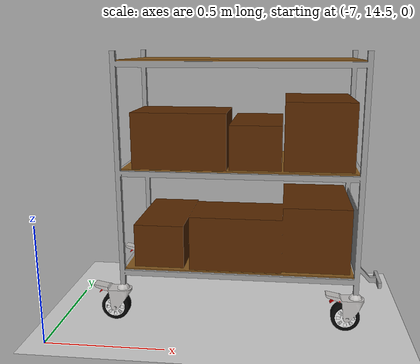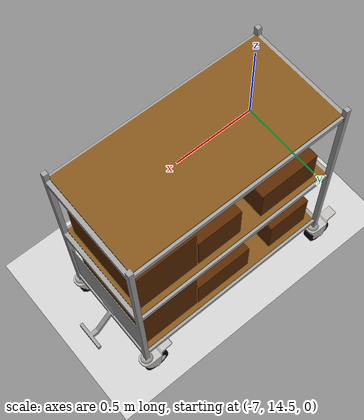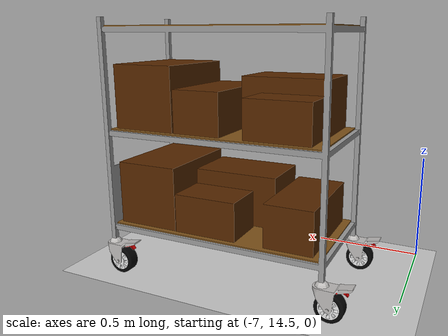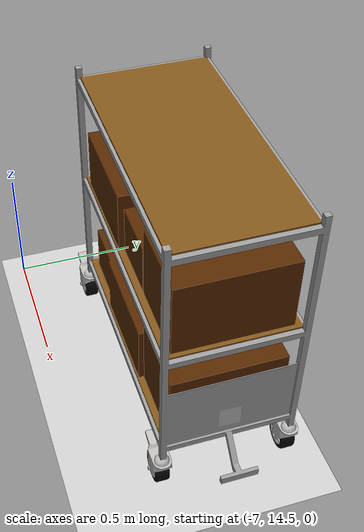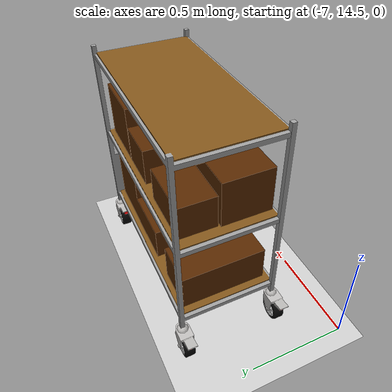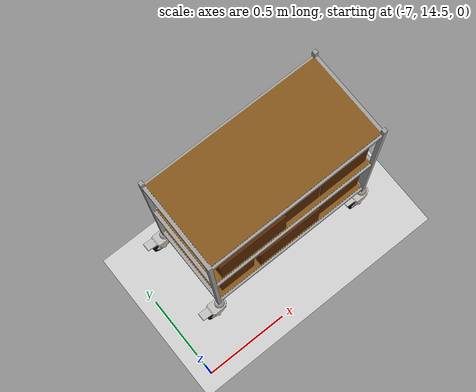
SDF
<sdf version="1.7">
 <world name="default">
  <physics name="1ms" type="ignored">
   <max_step_size>0.001</max_step_size>
   <real_time_factor>1.0</real_time_factor>
  </physics>
  <gravity>0 0 -9.8</gravity>
  <magnetic_field>6e-06 2.3e-05 -4.2e-05</magnetic_field>
  <atmosphere type="adiabatic"/>
  <plugin filename="ignition-gazebo-physics-system" name="ignition::gazebo::systems::Physics"/>
  <plugin filename="ignition-gazebo-user-commands-system" name="ignition::gazebo::systems::UserCommands"/>
  <plugin filename="ignition-gazebo-scene-broadcaster-system" name="ignition::gazebo::systems::SceneBroadcaster"/>
  <plugin filename="ignition-gazebo-sensors-system" name="ignition::gazebo::systems::Sensors">
   <render_engine>ogre2</render_engine>
  </plugin>
  <plugin filename="ignition-gazebo-imu-system" name="ignition::gazebo::systems::Imu"/>
  <plugin filename="ignition-gazebo-contact-system" name="ignition::gazebo::systems::Contact"/>
  <plugin name="rgl::RGLServerPluginManager" filename="RGLServerPluginManager">
   <do_ignore_entities_in_lidar_link>true</do_ignore_entities_in_lidar_link>
  </plugin>
  <light name="sun" type="directional">
   <pose>-5 -3 10 0 -0 0</pose>
   <cast_shadows>false</cast_shadows>
   <intensity>1</intensity>
   <direction>0 0 -1</direction>
   <diffuse>1 1 1 1</diffuse>
   <specular>1 1 1 1</specular>
   <attenuation><range>10</range><linear>1</linear><constant>1</constant><quadratic>0</quadratic></attenuation>
   <spot><inner_angle>0</inner_angle><outer_angle>0</outer_angle><falloff>0</falloff></spot>
  </light>
  <model name="ground_plane">
   <static>true</static>
   <link name="link">
    <collision name="collision"><geometry><plane><normal>0 0 1</normal></plane></geometry></collision>
    <visual name="visual">
     <geometry><plane><normal>0 0 1</normal><size>100 100</size></plane></geometry>
     <material>
      <ambient>0.8 0.8 0.8 1</ambient>
      <diffuse>0.8 0.8 0.8 1</diffuse>
      <specular>0.8 0.8 0.8 1</specular>
     </material>
    </visual>
   </link>
  </model>
  <include>
   <uri>https://fuel.ignitionrobotics.org/1.0/MovAi/models/cart_model_2</uri>
   <name>cart1</name>
   <pose>-5.73 15 0.109991 0 -1e-06 0</pose>
  </include>
 </world>
</sdf>

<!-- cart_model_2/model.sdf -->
<sdf version="1.7">
    <model name="cart_model2">
        <pose>0 0 0 0 0 0</pose>
        <!-- BASE_LINK FRAME -->
        <link name="base_link">
            <pose>0 0 0 0 0 -1.57079632679</pose>
            <inertial>
                <pose>0 -0.5 0.5 0 0 0</pose>
                <mass>30</mass>
                <inertia>
                    <ixx>0.1</ixx>
                    <ixy>0</ixy>
                    <ixz>0</ixz>
                    <iyy>0.1</iyy>
                    <iyz>0</iyz>
                    <izz>0.1</izz>
                </inertia>
            </inertial>
            <collision name="base_link_collision">
                <pose>0 0 0 0 0 0</pose>
                <geometry>
                    <mesh>
                        <scale>1 1 1</scale>
                        <uri>meshes/cart_base_collision.stl</uri>
                    </mesh>
                </geometry>
                <max_contacts>5</max_contacts>
                <surface>
                    <contact>
                        <ode>
                            <soft_cfm>1.0</soft_cfm>
                            <soft_erp>0.4</soft_erp>
                            <kp>1000000.0</kp>
                            <kd>1</kd>
                            <min_depth>0.01</min_depth>
                        </ode>
                    </contact>
                    <friction>
                        <ode>
                            <mu>1.16</mu>
                            <mu2>1.16</mu2>
                        </ode>
                    </friction>
                </surface>
            </collision>
            <visual name="base_link_visual">
                <pose>0 0 0 0 0 0</pose>
                <geometry>
                    <mesh>
                        <scale>1 1 1</scale>
                        <uri>meshes/cart_base.dae</uri>
                        <submesh>
                            <name>base_metal</name>
                            <center>false</center>
                        </submesh>
                    </mesh>
                </geometry>
            </visual>
            <visual name="base_shelf_visual">
                <pose>0 0 0 0 0 0</pose>
                <geometry>
                    <mesh>
                        <scale>1 1 1</scale>
                        <uri>meshes/cart_base.dae</uri>
                        <submesh>
                            <name>base_shelf</name>
                            <center>false</center>
                        </submesh>
                    </mesh>
                </geometry>
            </visual>
            <visual name="back_left_sup_visual">
                <pose>-0.245 -1.005 0.05 0 0 0</pose>
                <geometry>
                    <mesh>
                        <scale>1 1 1</scale>
                        <uri>meshes/sup_wheels.dae</uri>
                    </mesh>
                </geometry>
            </visual>
            <visual name="back_right_sup_visual">
                <pose>0.245 -1.005 0.05 0 0 0</pose>
                <geometry>
                    <mesh>
                        <scale>1 1 1</scale>
                        <uri>meshes/sup_wheels.dae</uri>
                    </mesh>
                </geometry>
            </visual>
            <visual name="tag_visual">
                <pose>0 0 0 0 0 0</pose>
                <geometry>
                    <mesh>
                        <scale>1 1 1</scale>
                        <uri>meshes/cart_base.dae</uri>
                        <submesh>
                            <name>tag</name>
                            <center>false</center>
                        </submesh>
                    </mesh>
                </geometry>
                <material>
                    <diffuse>1.0 1.0 1.0</diffuse>
                    <specular>1.0 1.0 1.0</specular>
                    <pbr>
                        <metal>
                            <albedo_map>meshes/cart_tag.png</albedo_map>
                        </metal>
                    </pbr>
                </material>
            </visual>
        </link>
        <!-- Wheels -->
        <!-- Back Left -->
        <link name="back_left">
            <pose>-1.04 -0.245 -0.05 0 0 1.570796327</pose>
            <inertial>
                <pose>0 0 0 0 1.570796327 0</pose>
                <mass>0.01</mass>
                <inertia>
                    <ixx>0.0000175</ixx>
                    <ixy>0</ixy>
                    <ixz>0</ixz>
                    <iyy>0.0000175</iyy>
                    <iyz>0</iyz>
                    <izz>0.00003125</izz>
                </inertia>
            </inertial>
            <collision name="back_left_collision">
                <pose>0 0 0 0 1.570796327 0</pose>
                <geometry>
                    <cylinder>
                        <length>0.03</length>
                        <radius>0.06</radius>
                    </cylinder>
                </geometry>
                <max_contacts>5</max_contacts>
                <surface>
                    <contact>
                        <ode>
                            <soft_cfm>1.0</soft_cfm>
                            <soft_erp>0.4</soft_erp>
                            <kp>1000000.0</kp>
                            <kd>1</kd>
                            <min_depth>0.01</min_depth>
                        </ode>
                    </contact>
                    <friction>
                        <ode>
                            <mu>1.16</mu>
                            <mu2>1.16</mu2>
                        </ode>
                    </friction>
                </surface>
            </collision>
            <visual name="back_left_visual">
                <pose>0 0 0 0 0 0</pose>
                <geometry>
                    <mesh>
                        <scale>1 1 1</scale>
                        <uri>meshes/wheel.dae</uri>
                    </mesh>
                </geometry>
            </visual>
        </link>
        <joint name="back_left_joint" type="revolute">
            <child>back_left</child>
            <parent>base_link</parent>
            <axis>
                <xyz>1 0 0</xyz>
                <dynamics>
                    <friction>0.5</friction>
                    <damping>0.0001</damping>
                </dynamics>
            </axis>
        </joint>
        <!-- Back Right -->
        <link name="back_right">
            <pose>-1.04 0.245 -0.05 0 0 1.570796327</pose>
            <inertial>
                <pose>0 0 0 0 1.570796327 0</pose>
                <mass>0.01</mass>
                <inertia>
                    <ixx>0.0000175</ixx>
                    <ixy>0</ixy>
                    <ixz>0</ixz>
                    <iyy>0.0000175</iyy>
                    <iyz>0</iyz>
                    <izz>0.00003125</izz>
                </inertia>
            </inertial>
            <collision name="back_right_collision">
                <pose>0 0 0 0 1.570796327 0</pose>
                <geometry>
                    <cylinder>
                        <length>0.03</length>
                        <radius>0.06</radius>
                    </cylinder>
                </geometry>
                <max_contacts>5</max_contacts>
                <surface>
                    <contact>
                        <ode>
                            <soft_cfm>1.0</soft_cfm>
                            <soft_erp>0.4</soft_erp>
                            <kp>1000000.0</kp>
                            <kd>1</kd>
                            <min_depth>0.01</min_depth>
                        </ode>
                    </contact>
                    <friction>
                        <ode>
                            <mu>1.16</mu>
                            <mu2>1.16</mu2>
                        </ode>
                    </friction>
                </surface>
            </collision>
            <visual name="back_right_visual">
                <pose>0 0 0 0 0 0</pose>
                <geometry>
                    <mesh>
                        <scale>1 1 1</scale>
                        <uri>meshes/wheel.dae</uri>
                    </mesh>
                </geometry>
            </visual>
        </link>
        <joint name="back_right_joint" type="revolute">
            <child>back_right</child>
            <parent>base_link</parent>
            <axis>
                <xyz>1 0 0</xyz>
                <dynamics>
                    <friction>0.5</friction>
                    <damping>0.0001</damping>
                </dynamics>
            </axis>
        </joint>
        <!-- Front Left -->
        <link name="wheel_sup_front_left">
            <pose>0 -0.245 0.05 0 0 1.570796327</pose>
            <inertial>
                <pose>0 0 0 0 0 0</pose>
                <mass>0.01</mass>
                <inertia>
                    <ixx>0.0000175</ixx>
                    <ixy>0</ixy>
                    <ixz>0</ixz>
                    <iyy>0.0000175</iyy>
                    <iyz>0</iyz>
                    <izz>0.0000175</izz>
                </inertia>
            </inertial>
            <visual name="wheel_sup_front_left_visual">
                <pose>0 0 0 0 0 3.14159265359</pose>
                <geometry>
                    <mesh>
                        <scale>1 1 1</scale>
                        <uri>meshes/sup_wheels.dae</uri>
                    </mesh>
                </geometry>
            </visual>
        </link>
        <joint name="wheel_sup_front_left_joint" type="revolute">
            <child>wheel_sup_front_left</child>
            <parent>base_link</parent>
            <axis>
                <xyz>0 0 1</xyz>
                <dynamics>
                    <damping>0.001</damping>
                </dynamics>
            </axis>
        </joint>
        <link name="front_left">
            <pose>-0.04 -0.245 -0.05 0 0 1.570796327</pose>
            <inertial>
                <pose>0 0 0 0 1.570796327 0</pose>
                <mass>0.01</mass>
                <inertia>
                    <ixx>0.0000175</ixx>
                    <ixy>0</ixy>
                    <ixz>0</ixz>
                    <iyy>0.0000175</iyy>
                    <iyz>0</iyz>
                    <izz>0.00003125</izz>
                </inertia>
            </inertial>
            <collision name="front_left_collision">
                <pose>0 0 0 0 1.570796327 0</pose>
                <geometry>
                    <cylinder>
                        <length>0.03</length>
                        <radius>0.06</radius>
                    </cylinder>
                </geometry>
                <max_contacts>5</max_contacts>
                <surface>
                    <contact>
                        <ode>
                            <soft_cfm>1.0</soft_cfm>
                            <soft_erp>0.4</soft_erp>
                            <kp>1000000.0</kp>
                            <kd>1</kd>
                            <min_depth>0.01</min_depth>
                        </ode>
                    </contact>
                    <friction>
                        <ode>
                            <mu>1.16</mu>
                            <mu2>1.16</mu2>
                        </ode>
                    </friction>
                </surface>
            </collision>
            <visual name="front_left_visual">
                <pose>0 0 0 0 0 0</pose>
                <geometry>
                    <mesh>
                        <scale>1 1 1</scale>
                        <uri>meshes/wheel.dae</uri>
                    </mesh>
                </geometry>
            </visual>
        </link>
        <joint name="front_left_joint" type="revolute">
            <child>front_left</child>
            <parent>wheel_sup_front_left</parent>
            <axis>
                <xyz>1 0 0</xyz>
                <dynamics>
                    <friction>0.5</friction>
                    <damping>0.0001</damping>
                </dynamics>
            </axis>
        </joint>
        <!-- Front Right -->
        <link name="wheel_sup_front_right">
            <pose>0 0.245 0.05 0 0 1.570796327</pose>
            <inertial>
                <pose>0 0 0 0 0 0</pose>
                <mass>0.01</mass>
                <inertia>
                    <ixx>0.0000175</ixx>
                    <ixy>0</ixy>
                    <ixz>0</ixz>
                    <iyy>0.0000175</iyy>
                    <iyz>0</iyz>
                    <izz>0.0000175</izz>
                </inertia>
            </inertial>
            <visual name="wheel_sup_front_right_visual">
                <pose>0 0 0 0 0 3.14159265359</pose>
                <geometry>
                    <mesh>
                        <scale>1 1 1</scale>
                        <uri>meshes/sup_wheels.dae</uri>
                    </mesh>
                </geometry>
            </visual>
        </link>
        <joint name="wheel_sup_front_right_joint" type="revolute">
            <child>wheel_sup_front_right</child>
            <parent>base_link</parent>
            <axis>
                <xyz>0 0 1</xyz>
                <dynamics>
                    <damping>0.001</damping>
                </dynamics>
            </axis>
        </joint>
        <link name="front_right">
            <pose>-0.04 0.245 -0.05 0 0 1.570796327</pose>
            <inertial>
                <pose>0 0 0 0 1.570796327 0</pose>
                <mass>0.01</mass>
                <inertia>
                    <ixx>0.0000175</ixx>
                    <ixy>0</ixy>
                    <ixz>0</ixz>
                    <iyy>0.0000175</iyy>
                    <iyz>0</iyz>
                    <izz>0.00003125</izz>
                </inertia>
            </inertial>
            <collision name="front_right_collision">
                <pose>0 0 0 0 1.570796327 0</pose>
                <geometry>
                    <cylinder>
                        <length>0.03</length>
                        <radius>0.06</radius>
                    </cylinder>
                </geometry>
                <max_contacts>5</max_contacts>
                <surface>
                    <contact>
                        <ode>
                            <soft_cfm>1.0</soft_cfm>
                            <soft_erp>0.4</soft_erp>
                            <kp>1000000.0</kp>
                            <kd>1</kd>
                            <min_depth>0.01</min_depth>
                        </ode>
                    </contact>
                    <friction>
                        <ode>
                            <mu>1.16</mu>
                            <mu2>1.16</mu2>
                        </ode>
                    </friction>
                </surface>
            </collision>
            <visual name="front_right_visual">
                <pose>0 0 0 0 0 0</pose>
                <geometry>
                    <mesh>
                        <scale>1 1 1</scale>
                        <uri>meshes/wheel.dae</uri>
                    </mesh>
                </geometry>
            </visual>
        </link>
        <joint name="front_right_joint" type="revolute">
            <child>front_right</child>
            <parent>wheel_sup_front_right</parent>
            <axis>
                <xyz>1 0 0</xyz>
                <dynamics>
                    <friction>0.5</friction>
                    <damping>0.0001</damping>
                </dynamics>
            </axis>
        </joint>
    </model>
</sdf>
